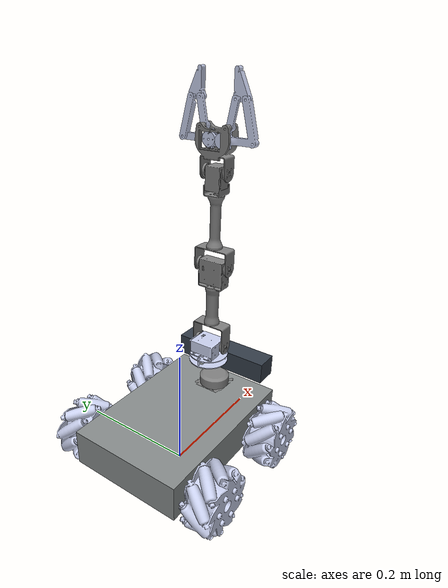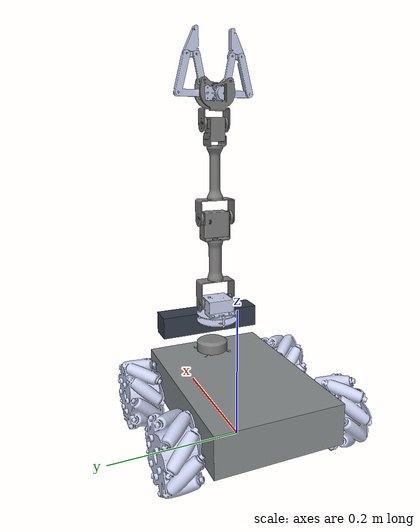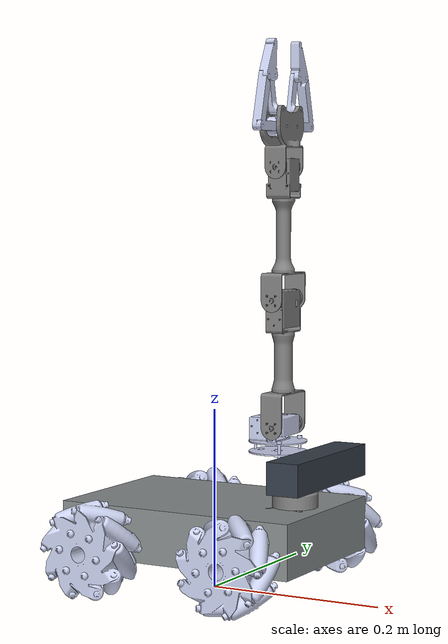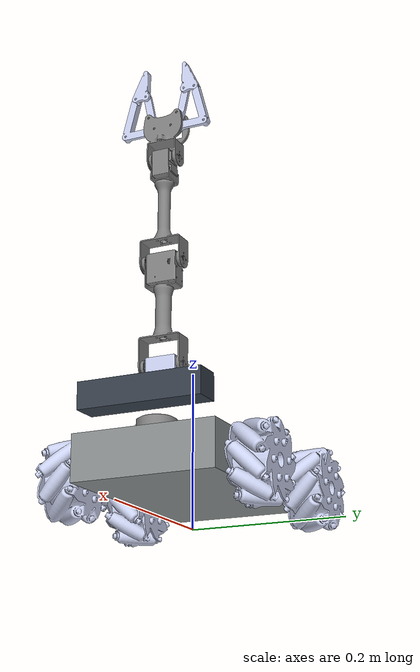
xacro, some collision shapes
<?xml version="1.0"?>
<robot xmlns:xacro="http://www.ros.org/wiki/xacro" name="mirte_master">
    <xacro:arg name="initial_positions_file" default="initial_positions.yaml" />

    <!-- Import mirte_master urdf file -->
    <xacro:include filename="$(find mirte_master_description)/urdf/mirte_master.xacro" />

    <!-- Import control_xacro -->
    <xacro:include filename="mirte_master.ros2_control.xacro" />

    <xacro:mirte_master_ros2_control name="FakeSystem" initial_positions_file="$(arg initial_positions_file)"/>

</robot>

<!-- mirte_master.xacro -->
<robot
  name="mirte_master" xmlns:xacro="http://ros.org/wiki/xacro">

  <xacro:arg name="flag_enable" default="False" />
  <xacro:arg name="arm_enable" default="True" />
  <xacro:arg name="screen_enable" default="False" />
  <xacro:arg name="front_camera_enable" default="False" />
  <xacro:arg name="sonar_enable" default="True" />
  <xacro:arg name="lidar_enable" default="True" />
  <xacro:arg name="depth_camera_enable" default="True" />
  <xacro:arg name="imu_enable" default="True" />
  <xacro:arg name="sim" default="False" />
  <xacro:arg name="noise" default="True" />

  <xacro:property name="camera_name" value="camera" lazy_eval="False"/>
  <xacro:property name="namespace" value="" scope="global" lazy_eval="False"/>
  <xacro:property name="tf_namespace" value="" scope="global" lazy_eval="False"/>

  <xacro:arg name="use_correct_laser_frame" default="True" />

  <xacro:property name="wheel_radius" value="0.050" />
  <xacro:property name="wheel_length" value="0.055" />
  <xacro:property name="wheel_mass" value="2.15" />

  <xacro:property name="wheel_velocity" value="8" />
  <xacro:property name="wheel_effort" value="5" />

  <xacro:property name="base_mass" value="5.0" />
  <xacro:property name="visualize_sensors" value="True" />

  <material name="blue">
    <color rgba="0.203125 0.23828125 0.28515625 1.0" />
  </material>

  <xacro:include filename="$(find mirte_master_description)/urdf/mirte_master_base.gazebo.xacro" />

  <xacro:if value="$(arg depth_camera_enable)">
    <xacro:include filename="$(find mirte_master_description)/urdf/orbbec_astra_plus_pro.xacro" />
    <xacro:sensor_orbbec_astra_pro_plus name="${camera_name}" parent="frame_link" color="blue">
      <origin xyz="0.01 -0.146658788505756 0.0427" rpy="0 0 ${radians(-90)}" />
    </xacro:sensor_orbbec_astra_pro_plus>
  </xacro:if>

  <xacro:if value="$(arg imu_enable)">
    <link name="imu_link" />

    <joint name="imu_joint" type="fixed">
      <origin xyz="0 0 0.10" />
      <parent link="base_link" />
      <child link="imu_link" />
    </joint>
  </xacro:if>

  <link name="base_link" />
  <gazebo reference="base_link">
     <kinematic>1</kinematic>
  </gazebo>

  <joint name="frame_base_joint" type="fixed">
    <origin xyz="0 0 0.10" rpy="0 0 ${radians(90)}" />
    <parent link="base_link" />
    <child link="frame_link" />
  </joint>

  <link
    name="frame_link">
    <inertial>
      <origin xyz="-0.00024285 0.0082178 ${-0.0037661 - 0.04}" />
      <mass value="${base_mass}" />
      <inertia
        ixx="${base_mass * (0.06**2 + 0.28**2) / 12}"
        iyy="${base_mass * (0.19**2 + 0.06**2) / 12}"
        izz="${base_mass * (0.19**2 + 0.28**2) / 12}"
        ixy="0" ixz="0" iyz="0" />
    </inertial>
    <visual>
      <geometry>
        <mesh
          filename="package://mirte_master_description/meshes/frame_link.STL" />
      </geometry>
      <material name="">
        <color rgba="0.52941 0.54902 0.54902 1" />
      </material>
    </visual>

    <collision>
      <origin xyz="0 0 -0.03" />
      <geometry>
        <box size="0.19 0.28 0.06" />
      </geometry>
    </collision>

    <collision>
      <origin xyz="0 0.05 0.045" />
      <geometry>
        <box size="0.18 0.16 0.05" />
      </geometry>
    </collision>

    <collision>
      <origin xyz="-0.062156 -0.002558 0.0125" rpy="0 0 ${radians(32.5)}" />
      <geometry>
        <box size="0.013 0.03 0.025" />
      </geometry>
    </collision>

    <collision>
      <origin xyz="0.064835 0.001664 0.0125" rpy="0 0 ${radians(-32.5)}" />
      <geometry>
        <box size="0.013 0.04 0.025" />
      </geometry>
    </collision>
  </link>

  <xacro:include filename="$(find mirte_master_description)/urdf/wheel.xacro" />

    <xacro:mecanum_wheel name="front_left" wheel_type="left" link_origin="0.025">
      <origin
        xyz="${0.153 - 0} -0.085 -0.0455"
        rpy="1.5708 0 -1.5708" />
    </xacro:mecanum_wheel>

    <xacro:mecanum_wheel name="rear_left" wheel_type="right" link_origin="0.025">
      <origin
        xyz="${0.153 - 0} 0.085 -0.0455"
        rpy="1.5708 0 -1.5708" />
    </xacro:mecanum_wheel>

    <xacro:mecanum_wheel name="front_right" wheel_type="right" link_origin="-0.025">
      <origin
        xyz="${-0.153 + wheel_length} -0.085 -0.0455"
        rpy="1.5708 0 -1.5708" />
    </xacro:mecanum_wheel>

    <xacro:mecanum_wheel name="rear_right" wheel_type="left" link_origin="-0.025">
      <origin
        xyz="${-0.153 + wheel_length} 0.085 -0.0455"
        rpy="1.5708 0 -1.5708" />
    </xacro:mecanum_wheel>

  <xacro:if value="$(arg front_camera_enable)">
    <link
      name="cam_front">
      <inertial>
        <origin
          xyz="-0.00010069 -0.00018452 0.0033961"
          rpy="0 0 0" />
        <mass
          value="0.0022023" />
        <inertia
          ixx="7.901E-08"
          ixy="-1.4438E-25"
          ixz="5.502E-24"
          iyy="1.049E-07"
          iyz="-1.0016E-23"
          izz="1.3983E-07" />
      </inertial>
      <visual>
        <origin
          xyz="0 0 0"
          rpy="0 0 0" />
        <geometry>
          <mesh
            filename="package://mirte_master_description/meshes/cam_front.STL" />
        </geometry>
        <material
          name="">
          <color
            rgba="0.79608 0.82353 0.93725 1" />
        </material>
      </visual>
    </link>
    <joint
      name="cam_joint_front"
      type="fixed">
      <origin
        xyz="0 -0.1325 -0.0285"
        rpy="1.5708 0 0" />
      <parent link="frame_link" />
      <child link="cam_front" />
      <axis xyz="0 0 0" />
    </joint>
  </xacro:if>

  <xacro:property name="wheel_zoff" value="0.05"/>
   <link name="base_footprint"/>
   <joint name="base_joint" type="fixed">
     <parent link="base_link"/>
     <child link="base_footprint"/>
     <origin xyz="0.0 0.0 ${-(wheel_radius + wheel_zoff)}" rpy="0 0 0"/>
   </joint>

  <xacro:if value="$(arg sonar_enable)">
    <xacro:include filename="$(find mirte_master_description)/urdf/ultrasonic.xacro" />

    <joint name="chassis_base_joint" type="fixed">
      <parent link="frame_link" />
      <child link="link_chassis" />
    </joint>

    <link name="link_chassis" />
    <xacro:ultrasonic_sensor name="front_left">
      <origin
        xyz="0.05297775289576 -0.120282421780502 -0.031"
        rpy="0 0 ${-pi/2+0.296705972839036}" />
    </xacro:ultrasonic_sensor>

    <xacro:ultrasonic_sensor name="front_right">
      <origin
        xyz="-0.05297775289576 -0.120282421780502 -0.031"
        rpy="0 0 ${-pi/2-0.296705972839036}" />
    </xacro:ultrasonic_sensor>

    <xacro:ultrasonic_sensor name="rear_left">
      <origin
        xyz="0.0565606470918482 0.119187021096338 -0.031"
        rpy="0 0 ${-pi/2 + 2.84488668075076}" />
    </xacro:ultrasonic_sensor>

    <xacro:ultrasonic_sensor name="rear_right">
      <origin
        xyz="-0.0565606470918482 0.119187021096338 -0.031"
        rpy="0 0 ${-pi/2 -2.84488668075076}" />
    </xacro:ultrasonic_sensor>
  </xacro:if>

  <xacro:if value="$(arg lidar_enable)">
    <xacro:include filename="$(find mirte_master_description)/urdf/lidar.xacro" />
  </xacro:if>

  <xacro:if value="$(arg screen_enable)">
    <link
      name="screen">
      <inertial>
        <origin
          xyz="-1.24638847975239E-07 0.0013371323974908 0.00160606068028191"
          rpy="0 0 0" />
        <mass
          value="0.00357270774970056" />
        <inertia
          ixx="1.29976980207027E-07"
          ixy="-1.78182996362165E-11"
          ixz="-4.24689246841474E-13"
          iyy="2.09902246549457E-07"
          iyz="1.92672613573332E-09"
          izz="3.37075734369407E-07" />
      </inertial>
      <visual>
        <origin
          xyz="0 0 0"
          rpy="0 0 0" />
        <geometry>
          <mesh
            filename="package://mirte_master_description/meshes/screen.STL" />
        </geometry>
        <material
          name="">
          <color
            rgba="0.768627450980392 0.768627450980392 0.768627450980392 1" />
        </material>
      </visual>
      <collision>
        <origin
          xyz="0 0 0"
          rpy="0 0 0" />
        <geometry>
          <mesh
            filename="package://mirte_master_description/meshes/screen.STL" />
        </geometry>
      </collision>
    </link>
    <joint
      name="screen_joint"
      type="fixed">
      <origin
        xyz="0 0.121521156261136 0.0540000000000046"
        rpy="1.5707963267949 0 -3.14159265358979" />
      <parent
        link="frame_link" />
      <child
        link="screen" />
      <axis
        xyz="0 0 0" />
    </joint>
  </xacro:if>

  <xacro:if value="$(arg flag_enable)">
    <xacro:include filename="$(find mirte_master_description)/urdf/flag.xacro" />
  </xacro:if>

  <xacro:if value="$(arg arm_enable)">
    <xacro:include filename="$(find mirte_master_description)/urdf/arm.xacro" />
  </xacro:if>

</robot>

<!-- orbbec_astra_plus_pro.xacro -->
<robot name="sensor_orbbec_astra_pro_plus" xmlns:xacro="http://ros.org/wiki/xacro">

     <xacro:property name="orbbec_astra_pro_plus_scale" value="1.0" />
     <!-- RGB sensor - cam -->
     <!-- THESE MIGHT NEED TO CHANGE IF THE RESOLUTION IS NOT 640x480 -->
     <xacro:property name="orbbec_astra_pro_plus_rel_rgb_px" value="0.0" />
     <xacro:property name="orbbec_astra_pro_plus_rel_rgb_py" value="-0.0125" />
     <xacro:property name="orbbec_astra_pro_plus_rel_rgb_pz" value="-0.0150" />

     <!-- IR sensor - depth -->
     <xacro:property name="orbbec_astra_pro_plus_depth_rel_rgb_px" value="0.0" />
     <xacro:property name="orbbec_astra_pro_plus_depth_rel_rgb_py" value="0.0250" />
     <xacro:property name="orbbec_astra_pro_plus_depth_rel_rgb_pz" value="0.0" />
     <xacro:property name="M_PI" value="3.1415926535897931" />

     <xacro:macro name="sensor_orbbec_astra_pro_plus"
          params="name parent *origin color rgb_w:=640 rgb_h:=480 stddev:=0.5">

          <joint name="${name}_rgb_joint" type="fixed">
               <xacro:insert_block name="origin" />
               <parent link="${parent}" />
               <child link="${name}_rgb_frame" />
          </joint>

          <link name="${name}_rgb_frame">
               <inertial>
                    <mass value="0.001" />
                    <origin xyz="0 0 0" />
                    <inertia ixx="0.0001" ixy="0.0" ixz="0.0" iyy="0.0001" iyz="0.0" izz="0.0001" />
               </inertial>
          </link>

          <joint name="${name}_rgb_optical_joint" type="fixed">
               <origin xyz="0.0 0.0 0.0" rpy="${-M_PI/2} 0 ${-M_PI/2}" />
               <parent link="${name}_rgb_frame" />
               <child link="${name}_rgb_optical_frame" />
          </joint>

          <link name="${name}_rgb_optical_frame">
          </link>

          <joint name="${name}_joint" type="fixed">
               <origin
                    xyz="${orbbec_astra_pro_plus_rel_rgb_px} ${orbbec_astra_pro_plus_rel_rgb_py} ${orbbec_astra_pro_plus_rel_rgb_pz}"
                    rpy="0.0 0 0" />
               <parent link="${name}_rgb_frame" />
               <child link="${name}_link" />
          </joint>

          <link name="${name}_link">
               <visual>
                    <origin xyz="0 0 0" rpy="0 0 0" />
                    <geometry>
                         <mesh
                              filename="package://mirte_master_description/meshes/orbbec_astra.stl" />
                    </geometry>
                    <material name="${color}" />
               </visual>
               <collision>
                    <origin xyz="-0.0183 0.0 0.0165" rpy="0 0 0" />
                    <geometry>
                         <box size="0.0370 .1650 0.0350" />
                    </geometry>
               </collision>
               <inertial>
                    <mass value="0.564" />
                    <origin xyz="0 0 0" />
                    <inertia ixx="0.003881243" ixy="0.0" ixz="0.0" iyy="0.000498940" iyz="0.0"
                         izz="0.003879257" />
               </inertial>
          </link>

          <joint name="${name}_depth_joint" type="fixed">
               <origin
                    xyz="${orbbec_astra_pro_plus_depth_rel_rgb_px} ${orbbec_astra_pro_plus_depth_rel_rgb_py} ${orbbec_astra_pro_plus_depth_rel_rgb_pz}"
                    rpy="0 0 0" />
               <parent link="${name}_rgb_frame" />
               <child link="${name}_depth_frame" />
          </joint>

          <link name="${name}_depth_frame">
          </link>

          <joint name="${name}_depth_optical_joint" type="fixed">
               <origin xyz="0 0 0" rpy="${-M_PI/2} 0 ${-M_PI/2}" />
               <parent link="${name}_depth_frame" />
               <child link="${name}_depth_optical_frame" />
          </joint>

          <link name="${name}_depth_optical_frame">
          </link>

          <!-- RGBD sensor for simulation, same as Kinect -->
          <xacro:sensor_orbbec_astra_pro_plus_gazebo />

     </xacro:macro>

     <!-- ====================================================
                           Gazebo
     ========================================================= -->

     <xacro:macro name="sensor_orbbec_astra_pro_plus_gazebo">

          <plugin
               filename="gz-sim-sensors-system"
               name="gz::sim::systems::Sensors">
               <render_engine>ogre2</render_engine>
          </plugin>

          <gazebo reference="${name}_link">
             <sensor name="${name}" type="rgbd_camera">
                <visualize>true</visualize>
                <update_rate>30.0</update_rate>
                <alwaysOn>true</alwaysOn>
                <topic>rgbd_camera</topic>
                <camera name="RS_D455">
                    <horizontal_fov>${60.0*M_PI/180.0}</horizontal_fov>
                    <image>
                        <width>${rgb_w}</width>
                        <height>${rgb_h}</height>
                        <format>R8G8B8</format>
                    </image>
                    <clip>
                        <near>0.05</near>
                        <far>10.0</far>
                    </clip>
                    <distorsion>
                         <k1>0.0</k1>
                         <k2>0.0</k2>
                         <k3>0.0</k3>
                         <p1>0.0</p1>
                         <p2>0.0</p2>
                    </distorsion>
                    <optical_frame_id>camera_link</optical_frame_id>
                </camera>
            </sensor>
         </gazebo>
     </xacro:macro>

</robot>

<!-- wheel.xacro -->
<!-- Copied from github:ArendJan/mirte-gazebo branch rsp -->
<!-- Modified to remove the collision and change the minimum distance -->
<robot xmlns:xacro="http://www.ros.org/wiki/xacro">
  <xacro:macro name="mecanum_wheel" params="name *origin link_origin wheel_type">

  <link
    name="${name}_wheel">
    <inertial>
      <origin xyz="0 0 ${link_origin}" />
      <mass value="${wheel_mass}" />
      <inertia
        ixx="${wheel_mass * (3 * (wheel_radius**2) + (wheel_length**2)) / 12}"
        iyy="${wheel_mass * (3 * (wheel_radius**2) + (wheel_length**2)) / 12}"
        izz="${wheel_mass * (wheel_radius **2) / 2}"
        ixy="0" ixz="0" iyz="0" />
    </inertial>
    <visual>
      <geometry>
        <mesh
          filename="package://mirte_master_description/meshes/wheel_${wheel_type}.STL" />
      </geometry>
      <material name="">
        <color rgba="0.79216 0.81961 0.93333 1" />
      </material>
    </visual>
    <collision>
      <origin xyz="0 0 ${link_origin}" />
      <geometry>
        <cylinder radius="${wheel_radius}" length="${wheel_length}" />
      </geometry>
    </collision>
  </link>

  <joint
    name="${name}_wheel_joint"
    type="continuous">
    <xacro:insert_block name="origin"/>
    <parent link="frame_link" />
    <child link="${name}_wheel" />
    <axis xyz="0 0 -1" />
  </joint>

  <transmission name="${name}_wheel_transmission">
    <type>transmission_interface/SimpleTransmission</type>
    <joint name="${name}_wheel_joint">
      <hardwareInterface>hardware_interface/VelocityJointInterface</hardwareInterface>
    </joint>
    <actuator name="${name}_wheel_actuator">
      <mechanicalReduction>1</mechanicalReduction>
    </actuator>
  </transmission>

  </xacro:macro>
</robot>

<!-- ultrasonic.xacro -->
<!-- Copied from github:ArendJan/mirte-gazebo branch rsp -->
<!-- Modified to remove the collision and change the minimum distance -->
<robot xmlns:xacro="http://www.ros.org/wiki/xacro">
  <xacro:macro name="ultrasonic_sensor" params="name *origin">
    <xacro:property name="sonar_angle_max" value="${radians(15)}"/>

    <joint name="sonar_${name}" type="fixed">
      <axis xyz="0 1 0"/>
      <xacro:insert_block name="origin"/>
      <parent link="link_chassis"/>
      <child link="${name}_sonar"/>
    </joint>

    <link name="${name}_sonar">
      <visual>
        <origin rpy="0 0 ${radians(-90)}" />
        <geometry>
          <mesh filename="package://mirte_master_description/meshes/ultrasonic_fl.STL" />
        </geometry>
        <material name="blue" />
      </visual>
      <collision>
        <origin rpy="0 0 ${radians(-90)}" />
        <geometry>
          <box size=".045 .025 .02" />
        </geometry>
      </collision>
    </link>

    <gazebo reference="${name}_sonar">
      <sensor type="ray" name="range_sensor_${name}">
        <visualize>${visualize_sensors}</visualize>
          <ray>
            <scan>
              <horizontal>
                <!-- for some reason 1 does not work, we neex 2x2 -->
                <samples>2</samples>
                <resolution>1</resolution>
                <min_angle>-0.26</min_angle>
                <max_angle>0.26</max_angle>
              </horizontal>
            <vertical>
              <samples>2</samples>
              <resolution>1</resolution>
              <min_angle>-0.014835</min_angle>
              <max_angle>0.014835</max_angle>
            </vertical>
         </scan>
         <range>
           <min>0.03</min>
           <max>4</max>
           <resolution>0.01</resolution>
         </range>
         <!-- Using gazebo's noise instead of plugin's -->
         <noise>
           <type>gaussian</type>
           <mean>0.0</mean>
           <stddev>0.01</stddev>
         </noise>
       </ray>
       <!-- Using gazebo's update rate instead of plugin's -->
       <update_rate>30</update_rate>

       <plugin name="gazebo_ros_range_controller_${name}" filename="libgazebo_ros_ray_sensor.so">
         <ros>
           <namespace>/mirte</namespace>
           <remapping>~/out:=distance/${name}</remapping>
         </ros>
         <output_type>sensor_msgs/Range</output_type>
         <radiation_type>ultrasound</radiation_type>
       </plugin>

     </sensor>
   </gazebo>

  </xacro:macro>
</robot>

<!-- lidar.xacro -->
<robot xmlns:xacro="http://www.ros.org/wiki/xacro">
  <link name="lidar_base">
    <inertial>
      <origin
        xyz="-3.97749846947626E-10 0.0118651639742243 -9.54386087724301E-05"
        rpy="0 0 0" />
      <mass
        value="0.100511981883415" />
      <inertia
        ixx="3.39518063996325E-05"
        ixy="-1.6211120950128E-12"
        ixz="-2.92284267016588E-13"
        iyy="4.1935853096105E-05"
        iyz="1.1815579647801E-07"
        izz="3.44778101670497E-05" />
    </inertial>
    <visual>
      <origin
        xyz="0 0 0"
        rpy="0 0 0" />
      <geometry>
        <mesh
          filename="package://mirte_master_description/meshes/lidar.STL" />
      </geometry>
      <material
        name="">
        <color
          rgba="0.501960784313725 0.501960784313725 0.501960784313725 1" />
      </material>
    </visual>
    <collision>
      <origin
        xyz="0 0 0"
        rpy="0 0 0" />
      <geometry>
        <mesh
          filename="package://mirte_master_description/meshes/lidar.STL" />
      </geometry>
    </collision>
  </link>
  <joint
    name="lidar_base_joint"
    type="fixed">
    <origin
      xyz="0 -0.1005 0.0072113248654052"
      rpy="-1.5707963267949 0 -1.5707963267949" />
    <parent
      link="frame_link" />
    <child
      link="lidar_base" />
    <axis xyz="0 0 0" />
  </joint>

  <link name="lidar_link"></link>

  <joint name="lidar_joint" type="fixed">
    <origin rpy="${radians(90)} ${radians(0)} 0" />
    <parent link="lidar_base" />
    <child link="lidar_link" />
    <axis xyz="0 0 0" />
  </joint>

  <xacro:if value="$(arg use_correct_laser_frame)">
    <link name="laser"></link>

    <joint name="laser_joint" type="fixed">
      <origin rpy="0 0 ${radians(90)}" />
      <parent link="lidar_link" />
      <child link="laser" />
      <axis xyz="0 0 0" />
    </joint>
    <xacro:property name="lidar_sensor_link" value="laser" />
  </xacro:if>
  <xacro:unless value="$(arg use_correct_laser_frame)">
    <xacro:property name="lidar_sensor_link" value="lidar_link" />
  </xacro:unless>

  <gazebo reference="lidar_link">
        <sensor name="lidar" type="ray">
            <pose> 0 0 0 0 0 0 </pose>
            <visualize>${visualize_sensors}</visualize>
            <update_rate>10</update_rate>
            <ray>
                <scan>
                    <horizontal>
                        <samples>360</samples>
                        <resolution>1</resolution>
                        <min_angle>-3.14</min_angle>
                        <max_angle>3.14</max_angle>
                    </horizontal>
                </scan>
                <range>
                    <min>0.03</min>
                    <max>12</max>
                    <resolution>0.01</resolution>
                </range>
            </ray>
            <plugin name="laser_controller" filename="libgazebo_ros_ray_sensor.so">
                <ros>
                    <remapping>~/out:=scan</remapping>
                </ros>
                <output_type>sensor_msgs/LaserScan</output_type>
                <frame_name>lidar_link</frame_name>
            </plugin>
        </sensor>
    </gazebo>

</robot>

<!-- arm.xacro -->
<robot xmlns:xacro="http://www.ros.org/wiki/xacro">
    <link
        name="shoulder_pan">
        <inertial>
            <origin
                xyz="-1.27894101951934E-05 0.0208058767653727 0.00585680210359747"
                rpy="0 0 0" />
            <mass
                value="0.0689676051678483" />
            <inertia
                ixx="1.10736817655159E-05"
                ixy="-9.06572517495388E-09"
                ixz="-2.13237951815141E-10"
                iyy="2.24480121987499E-05"
                iyz="-4.10984989642458E-07"
                izz="1.70252517510809E-05" />
        </inertial>
        <visual>
            <origin
                xyz="0 0 0"
                rpy="0 0 0" />
            <geometry>
                <mesh
                    filename="package://mirte_master_description/meshes/arm_Rot.STL" />
            </geometry>
            <material
                name="">
                <color
                    rgba="0.792156862745098 0.819607843137255 0.933333333333333 1" />
            </material>
        </visual>
        <collision>
            <origin
                xyz="0 0 0"
                rpy="0 0 0" />
            <geometry>
                <mesh
                    filename="package://mirte_master_description/meshes/arm_Rot.STL" />
            </geometry>
        </collision>
    </link>
    <joint
        name="shoulder_pan_joint"
        type="revolute">
        <origin
            xyz="0 -0.079274 0.06"
            rpy="1.5708 0 3.1416" />
        <parent
            link="frame_link" />
        <child
            link="shoulder_pan" />
        <axis
            xyz="0 1 0" />
        <limit
            lower="${pi/-2}"
            upper="${pi/2}"
            effort="2.0"
            velocity="2.0"
        />
    </joint>
    <link
        name="shoulder_lift">
        <inertial>
            <origin
                xyz="0.0764974362945755 0.000442680770353329 -4.93690401059954E-09"
                rpy="0 0 0" />
            <mass
                value="0.104616018825837" />
            <inertia
                ixx="3.85677839717214E-05"
                ixy="1.84827309047044E-08"
                ixz="1.42612941509626E-12"
                iyy="2.54245117502168E-05"
                iyz="-2.05142765424474E-12"
                izz="5.51611966703411E-05" />
        </inertial>
        <visual>
            <origin
                xyz="0 0 0"
                rpy="0 0 0" />
            <geometry>
                <mesh
                    filename="package://mirte_master_description/meshes/arm_Shoulder.STL" />
            </geometry>
            <material
                name="">
                <color
                    rgba="0.501960784313725 0.501960784313725 0.501960784313725 1" />
            </material>
        </visual>
        <collision>
            <origin
                xyz="0 0 0"
                rpy="0 0 0" />
            <geometry>
                <mesh
                    filename="package://mirte_master_description/meshes/arm_Shoulder.STL" />
            </geometry>
        </collision>
    </link>
    <joint
        name="shoulder_lift_joint"
        type="revolute">
        <origin
            xyz="0 0.0281 -0.00625"
            rpy="3.1416 0 1.5708" />
        <parent
            link="shoulder_pan" />
        <child
            link="shoulder_lift" />
        <axis
            xyz="0 1 0" />
        <limit
            lower="${pi/-2}"
            upper="${pi/2}"
            effort="2.0"
            velocity="2.0"
        />
    </joint>
    <link
        name="elbow">
        <inertial>
            <origin
                xyz="0.000768647609078278 0.0642294520091309 -2.34835863116567E-08"
                rpy="0 0 0" />
            <mass
                value="0.0709795960901316" />
            <inertia
                ixx="2.06491501981418E-05"
                ixy="1.76077623308388E-08"
                ixz="-6.06300089698489E-13"
                iyy="2.45686930201746E-05"
                iyz="3.04033870141042E-12"
                izz="3.79131240892547E-05" />
        </inertial>
        <visual>
            <origin
                xyz="0 0 0"
                rpy="0 0 0" />
            <geometry>
                <mesh
                    filename="package://mirte_master_description/meshes/arm_Elbow.STL" />
            </geometry>
            <material
                name="">
                <color
                    rgba="0.501960784313725 0.501960784313725 0.501960784313725 1" />
            </material>
        </visual>
        <collision>
            <origin
                xyz="0 0 0"
                rpy="0 0 0" />
            <geometry>
                <mesh
                    filename="package://mirte_master_description/meshes/arm_Elbow.STL" />
            </geometry>
        </collision>
    </link>
    <joint
        name="elbow_joint"
        type="revolute">
        <origin
            xyz="0.1378 0 0"
            rpy="-3.1416 0 1.5708" />
        <parent
            link="shoulder_lift" />
        <child
            link="elbow" />
        <axis
            xyz="1 0 0" />
        <limit
            lower="${pi/-2}"
            upper="${pi/2}"
            effort="2.0"
            velocity="2.0"
        />
    </joint>
    <link
        name="wrist">
        <inertial>
            <origin
                xyz="0.0225315136140379 0.000488092971965825 -2.74405760168628E-06"
                rpy="0 0 0" />
            <mass
                value="0.0464803878756425" />
            <inertia
                ixx="1.36228105923869E-05"
                ixy="-2.7486243117372E-08"
                ixz="-2.82180089490711E-08"
                iyy="7.22412070962973E-06"
                iyz="3.4652740053439E-09"
                izz="1.75204377049058E-05" />
        </inertial>
        <visual>
            <origin
                xyz="0 0 0"
                rpy="0 0 0" />
            <geometry>
                <mesh
                    filename="package://mirte_master_description/meshes/arm_Wrist.STL" />
            </geometry>
            <material
                name="">
                <color
                    rgba="0.501960784313725 0.501960784313725 0.501960784313725 1" />
            </material>
        </visual>
        <collision>
            <origin
                xyz="0 0 0"
                rpy="0 0 0" />
            <geometry>
                <mesh
                    filename="package://mirte_master_description/meshes/arm_Wrist.STL" />
            </geometry>
        </collision>
    </link>
    <joint
        name="wrist_joint"
        type="revolute">
        <origin
            xyz="-0.00014 0.14265 0"
            rpy="3.1416 0 1.5708" />
        <parent
            link="elbow" />
        <child
            link="wrist" />
        <axis
            xyz="0 1 0" />
        <limit
            lower="${pi/-2}"
            upper="${pi/2}"
            effort="2.0"
            velocity="2.0"
        />
    </joint>
    <link
        name="gripper">
        <inertial>
            <origin
                xyz="0.0128439388984141 0.00467107677719844 -0.023531822516204"
                rpy="0 0 0" />
            <mass
                value="0.0109603788959771" />
            <inertia
                ixx="1.64287457972505E-06"
                ixy="-2.54915969005551E-10"
                ixz="-3.17766452649769E-07"
                iyy="2.96639543247368E-06"
                iyz="-7.8877045337556E-08"
                izz="1.49193844890504E-06" />
        </inertial>
        <visual>
            <origin
                xyz="0 0 0"
                rpy="0 0 0" />
            <geometry>
                <mesh
                    filename="package://mirte_master_description/meshes/Gripper.STL" />
            </geometry>
            <material
                name="">
                <color
                    rgba="0.792156862745098 0.819607843137255 0.933333333333333 1" />
            </material>
        </visual>
        <collision>
            <origin
                xyz="0 0 0"
                rpy="0 0 0" />
            <geometry>
                <mesh
                    filename="package://mirte_master_description/meshes/Gripper.STL" />
            </geometry>
        </collision>
    </link>
    <joint
        name="gripper_joint"
        type="revolute">
        <origin
            xyz="0.0435 -0.012 0.0045"
            rpy="-1.5708 0 0" />
        <parent
            link="wrist" />
        <child
            link="gripper" />
        <axis
            xyz="0 -1 0" />
        <limit
            lower="-.20"
            upper="0.25"
            effort="2.0"
            velocity="2.0"
        />
    </joint>

   <link
        name="_gripper_link_r">
        <inertial>
            <origin
                xyz="-1.28017477174502E-08 0.00327806945611438 -0.015628977594268"
                rpy="0 0 0" />
            <mass
                value="0.00257857268754656" />
            <inertia
                ixx="4.78055533789155E-07"
                ixy="-5.230783542464E-14"
                ixz="-2.66258471113313E-13"
                iyy="4.85504704619794E-07"
                iyz="-3.012555423281E-08"
                izz="3.42900323604584E-08" />
        </inertial>
        <visual>
            <origin
                xyz="0 0 0"
                rpy="0 0 0" />
            <geometry>
                <mesh
                    filename="package://mirte_master_description/meshes/_gripper_link_r.STL" />
            </geometry>
            <material
                name="">
                <color
                    rgba="0.792156862745098 0.819607843137255 0.933333333333333 1" />
            </material>
        </visual>
        <collision>
            <origin
                xyz="0 0 0"
                rpy="0 0 0" />
            <geometry>
                <mesh
                    filename="package://mirte_master_description/meshes/_gripper_link_r.STL" />
            </geometry>
        </collision>
    </link>
    <joint
        name="_gripper_link_joint_r"
        type="revolute">
        <origin
            xyz="0.0605 0.0205 -0.0055"
            rpy="1.5708 0 -1.3641" />
        <parent
            link="wrist" />
        <child
            link="_gripper_link_r" />
        <axis
            xyz="0 -1 0" />
        <limit
            lower="-3.14"
            upper="3.14"
            effort="0.0"
            velocity="0.0" />
        <mimic joint="gripper_joint" multiplier="1.4"/>
    </joint>

    <link
        name="gripper_finger_r">
        <inertial>
            <origin
                xyz="0.0053582194655247 0.00456985538673528 -0.0146658643393019"
                rpy="0 0 0" />
            <mass
                value="0.00531205810762776" />
            <inertia
                ixx="6.56191216382328E-07"
                ixy="4.9417968242523E-09"
                ixz="-1.23756532787867E-07"
                iyy="7.67327744037516E-07"
                iyz="3.35637410041389E-08"
                izz="1.97644006824673E-07" />
        </inertial>
        <visual>
            <origin
                xyz="0 0 0"
                rpy="0 0 0" />
            <geometry>
                <mesh
                    filename="package://mirte_master_description/meshes/gripper_finger_r.STL" />
            </geometry>
            <material
                name="">
                <color
                    rgba="0.792156862745098 0.819607843137255 0.933333333333333 1" />
            </material>
        </visual>
        <collision>
            <origin
                xyz="0 0 0"
                rpy="0 0 0" />
            <geometry>
                <mesh
                    filename="package://mirte_master_description/meshes/gripper_finger_r.STL" />
            </geometry>
        </collision>
    </link>
    <joint
        name="gripper_finger_joint_r"
        type="fixed">
        <origin
            xyz="0 0.01 -0.037"
            rpy="0 0.20667 3.1416" />
        <parent
            link="_gripper_link_r" />
        <child
            link="gripper_finger_r" />
        <axis
            xyz="0 0 1" />
    </joint>
    <link
        name="_gripper_link_l">
        <inertial>
            <origin
                xyz="-2.05686406795635E-09 0.00327805387383495 -0.0156289677422455"
                rpy="0 0 0" />
            <mass
                value="0.0025785751096632" />
            <inertia
                ixx="4.78055731035803E-07"
                ixy="1.11114248069431E-14"
                ixz="5.45978048241403E-14"
                iyy="4.85504889003676E-07"
                iyz="-3.01256260104972E-08"
                izz="3.4290092499709E-08" />
        </inertial>
        <visual>
            <origin
                xyz="0 0 0"
                rpy="0 0 0" />
            <geometry>
                <mesh
                    filename="package://mirte_master_description/meshes/_gripper_link_l.STL" />
            </geometry>
            <material
                name="">
                <color
                    rgba="0.792156862745098 0.819607843137255 0.933333333333333 1" />
            </material>
        </visual>
        <collision>
            <origin
                xyz="0 0 0"
                rpy="0 0 0" />
            <geometry>
                <mesh
                    filename="package://mirte_master_description/meshes/_gripper_link_l.STL" />
            </geometry>
        </collision>
    </link>
    <joint
        name="_gripper_link_joint_l"
        type="revolute">
        <origin
            xyz="0.0605 -0.0205 -0.0055"
            rpy="1.5708 0 -1.7775" />
        <parent
            link="wrist" />
        <child
            link="_gripper_link_l" />
        <axis
            xyz="0 -1 0" />
        <limit
            lower="-3.14"
            upper="3.14"
            effort="0.0"
            velocity="0.0" />
        <mimic joint="gripper_joint" multiplier="-1.4"/>
    </joint>
    <link
        name="gripper_finger_l">
        <inertial>
            <origin
                xyz="0.00535821399237165 0.00543015238565805 -0.0146658496889369"
                rpy="0 0 0" />
            <mass
                value="0.00531205810762777" />
            <inertia
                ixx="6.56191216382329E-07"
                ixy="-4.94179682425222E-09"
                ixz="-1.23756532787868E-07"
                iyy="7.67327744037519E-07"
                iyz="-3.35637410041387E-08"
                izz="1.97644006824674E-07" />
        </inertial>
        <visual>
            <origin
                xyz="0 0 0"
                rpy="0 0 0" />
            <geometry>
                <mesh
                    filename="package://mirte_master_description/meshes/gripper_finger_l.STL" />
            </geometry>
            <material
                name="">
                <color
                    rgba="0.792156862745098 0.819607843137255 0.933333333333333 1" />
            </material>
        </visual>
        <collision>
            <origin
                xyz="0 0 0"
                rpy="0 0 0" />
            <geometry>
                <mesh
                    filename="package://mirte_master_description/meshes/gripper_finger_l.STL" />
            </geometry>
        </collision>
    </link>
    <joint
        name="gripper_finger_joint_l"
        type="fixed">
        <origin
            xyz="0 0 -0.037"
            rpy="0 0.20667 0" />
        <parent
            link="_gripper_link_l" />
        <child
            link="gripper_finger_l" />
        <axis
            xyz="0 0 1" />
    </joint>
    <link
        name="_Gripper_r">
        <inertial>
            <origin
                xyz="-0.011058953981311 0.00572378908343621 -0.0203029402870159"
                rpy="0 0 0" />
            <mass
                value="0.0127576574866818" />
            <inertia
                ixx="1.91784274511554E-06"
                ixy="-2.13316668505462E-10"
                ixz="3.18097729104346E-07"
                iyy="3.19294602407598E-06"
                iyz="-1.86219200901589E-07"
                izz="1.63755141963222E-06" />
        </inertial>
        <visual>
            <origin
                xyz="0 0 0"
                rpy="0 0 0" />
            <geometry>
                <mesh
                    filename="package://mirte_master_description/meshes/_Gripper_r.STL" />
            </geometry>
            <material
                name="">
                <color
                    rgba="0.792156862745098 0.819607843137255 0.933333333333333 1" />
            </material>
        </visual>
        <collision>
            <origin
                xyz="0 0 0"
                rpy="0 0 0" />
            <geometry>
                <mesh
                    filename="package://mirte_master_description/meshes/_Gripper_r.STL" />
            </geometry>
        </collision>
    </link>
    <joint
        name="_Gripper_joint_r"
        type="revolute">
        <origin
            xyz="0.0435 0.012 0.0045"
            rpy="-1.5708 0 -3.1416" />
        <parent
            link="wrist" />
        <child
            link="_Gripper_r" />
        <axis
            xyz="0 -1 0" />
        <limit
            lower="-.25"
            upper="0.20"
            effort="2.0"
            velocity="2.0"
        />
        <mimic joint="gripper_joint" multiplier="-1"/>
    </joint>

<gazebo>
    <plugin filename="libgazebo_grasp_fix.so" name="gazebo_grasp_fix">
       <arm>
          <arm_name>finger_gripper</arm_name>
          <palm_link>wrist</palm_link>
          <gripper_link>gripper</gripper_link>
          <gripper_link>_Gripper_r</gripper_link>
          <gripper_link>_gripper_link_l</gripper_link>
          <gripper_link>gripper_finger_l</gripper_link>
          <gripper_link>_gripper_link_r</gripper_link>
          <gripper_link>gripper_finger_r</gripper_link>
       </arm>
       <forces_angle_tolerance>100</forces_angle_tolerance>
       <update_rate>4</update_rate>
       <grip_count_threshold>4</grip_count_threshold>
       <max_grip_count>8</max_grip_count>
       <release_tolerance>0.005</release_tolerance>
       <disable_collisions_on_attach>false</disable_collisions_on_attach>
    </plugin>
</gazebo>

</robot>
